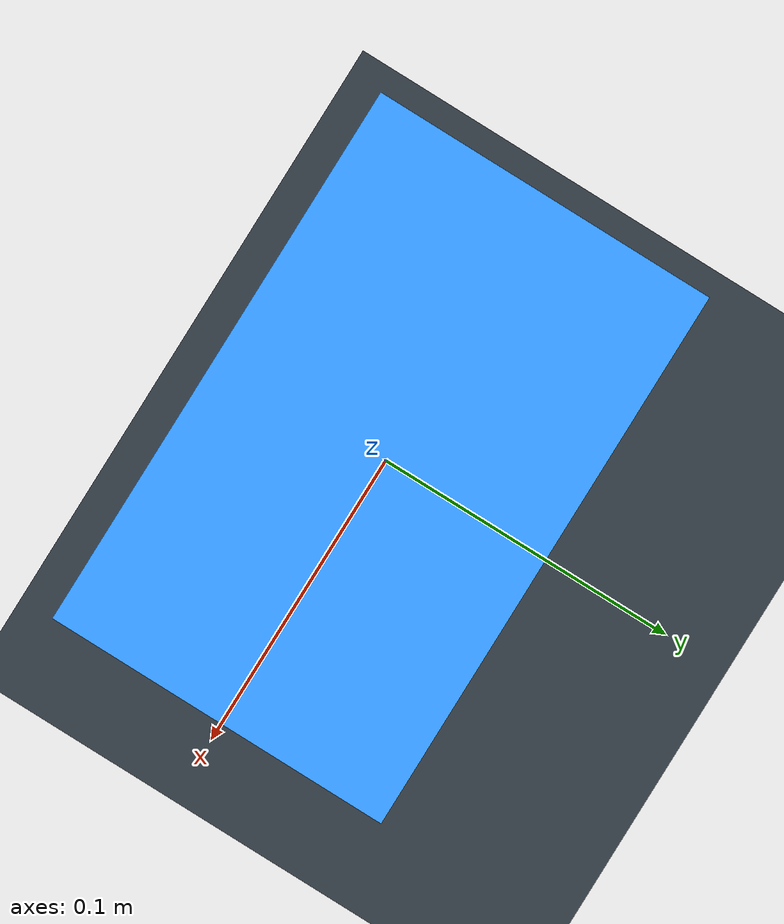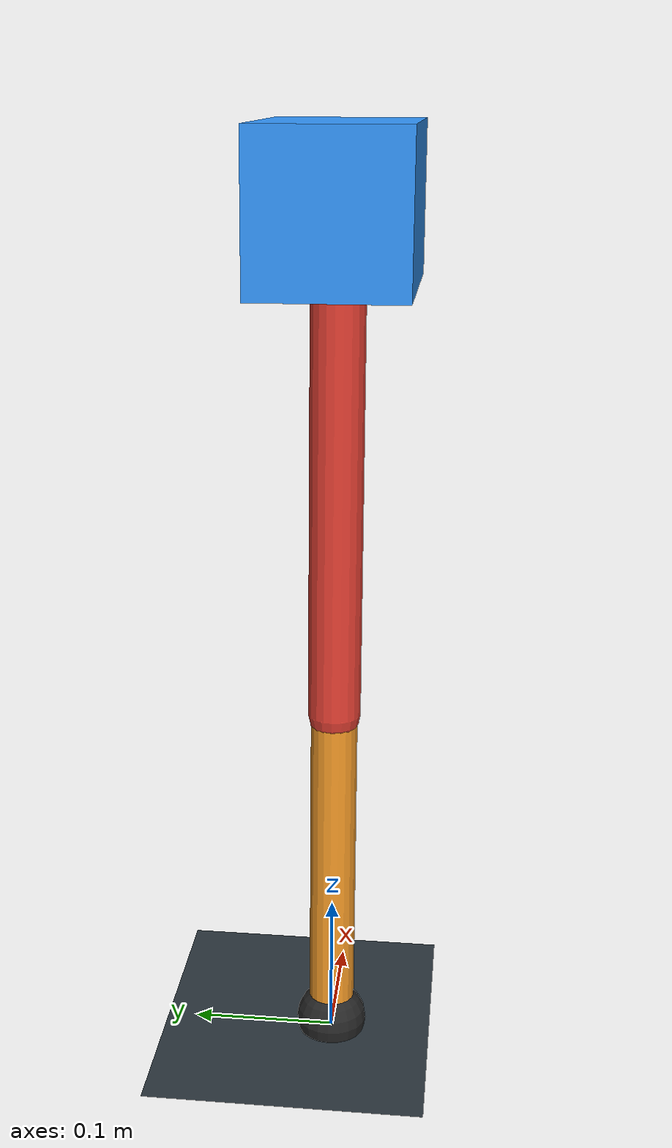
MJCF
<mujoco model="single_axis_two_bar">
  <compiler angle="radian" inertiafromgeom="true"/>
  <option timestep="0.001" integrator="implicitfast" gravity="0 0 -9.81"/>
  <default>
    <joint damping="0.08"/>
    <geom friction="1.2 0.01 0.0001" condim="3"/>
  </default>
  <worldbody>
    <geom name="floor" type="plane" size="5 5 0.1" rgba="0.18 0.22 0.25 1"/>
    <body name="carriage" pos="0 0 0.5861102694915954">
      <joint name="pole_slide" type="slide" axis="0 0 1"/>
      <geom name="payload" type="box" size="0.08 0.05 0.05" mass="2.271796528216537" rgba="0.2 0.6 1 1"/>
      <body name="thigh" pos="0 0 0">
        <joint name="hip" type="hinge" axis="0 1 0"/>
        <geom name="thigh_link" type="capsule" fromto="0 0 0 0 0 -0.339366562759332" size="0.018" mass="0.24180316029950552" rgba="0.9 0.25 0.2 1"/>
        <body name="shank" pos="0 0 -0.339366562759332">
          <joint name="knee" type="hinge" axis="0 1 0"/>
          <geom name="shank_link" type="capsule" fromto="0 0 0 0 0 -0.23909763259282815" size="0.016" mass="0.1703602226188564" rgba="0.95 0.6 0.15 1"/>
          <geom name="foot" type="sphere" pos="0 0 -0.23909763259282815" size="0.025" mass="0.03" rgba="0.15 0.15 0.15 1"/>
          <site name="toe" pos="0 0 -0.23909763259282815" size="0.008"/>
        </body>
      </body>
    </body>
  </worldbody>
  <actuator>
    <motor name="hip_motor" joint="hip" ctrlrange="-16.559366017530024 16.559366017530024"/>
    <motor name="knee_motor" joint="knee" ctrlrange="-35.21624386200282 35.21624386200282"/>
  </actuator>
</mujoco>
